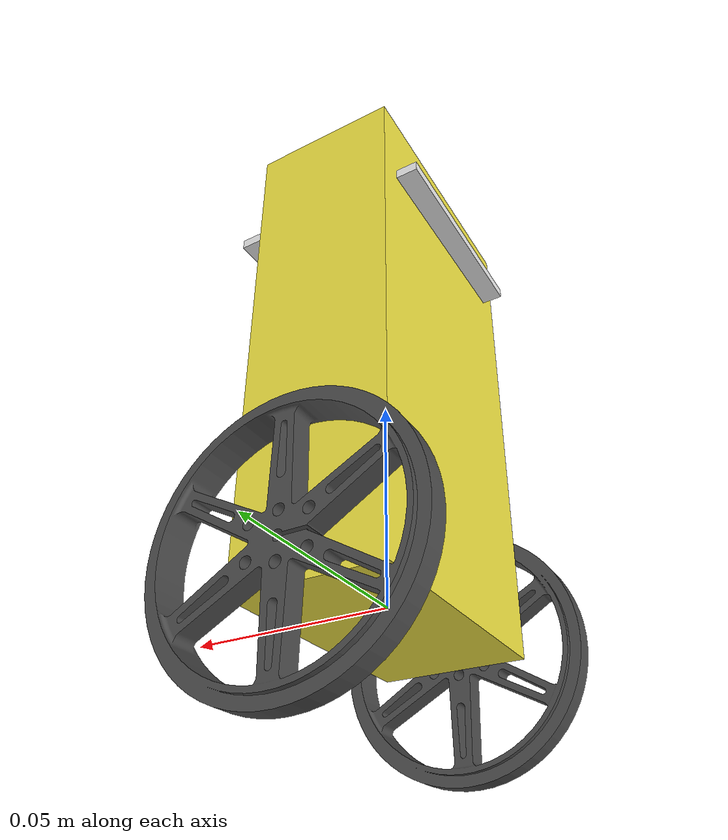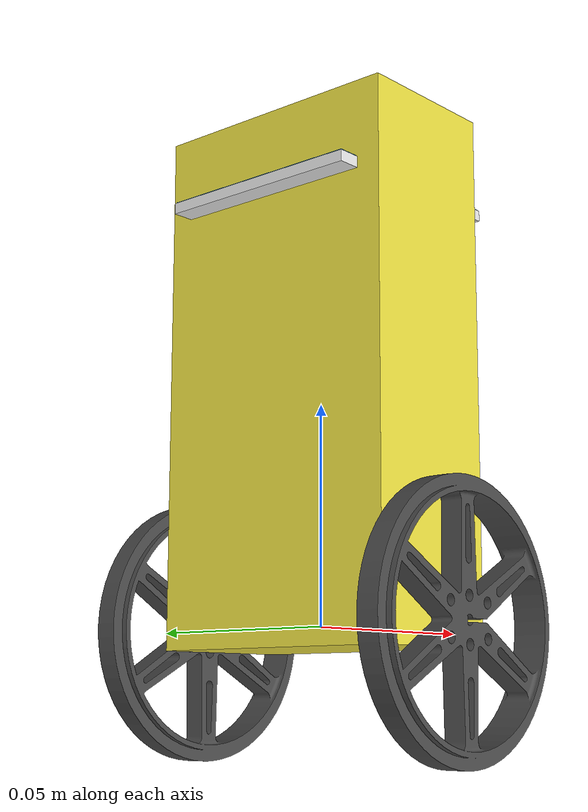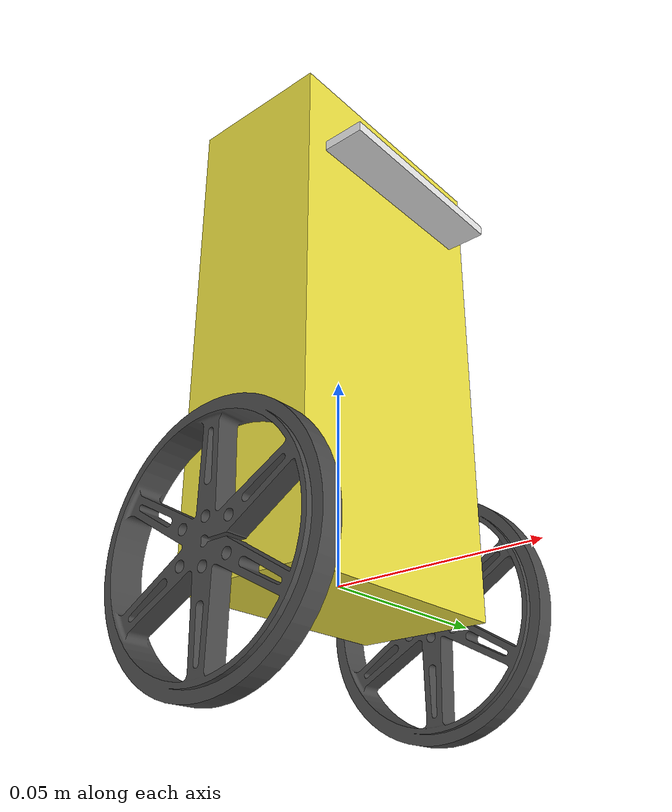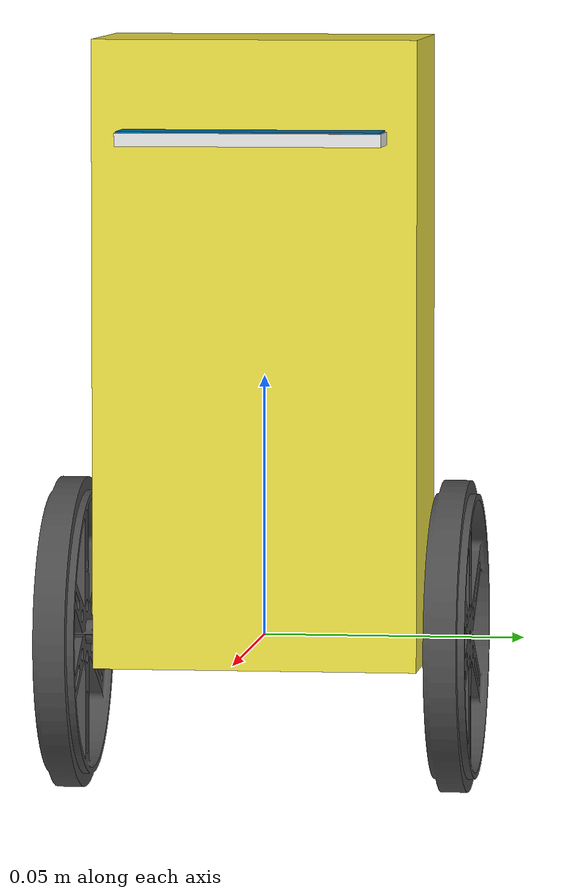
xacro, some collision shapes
<?xml version="1.0"?>

<!-- let's try a robot with aruco marker -->
<robot name="rosmip_4" xmlns:xacro="http://www.ros.org/wiki/xacro">

  <xacro:property name="chassis_length" value="0.035" />
  <xacro:property name="chassis_width"  value="0.062" />
  <xacro:property name="chassis_height" value="0.12" />
  <xacro:property name="chassis_mass"   value="0.18" />
  <xacro:property name="chassis_vert_offset" value="0.055" />

  <xacro:property name="left_wheel_radius"  value="0.03" />
  <xacro:property name="right_wheel_radius" value="0.03" />
  <xacro:property name="wheel_width"  value="0.01" />
  <xacro:property name="wheel_track"  value="0.083" />
  <xacro:property name="wheel_mass"   value="0.01" />
  <xacro:property name="wheel_joint_damping" value="0.01" />
  <xacro:property name="wheel_joint_friction" value="0.01" />

  <xacro:property name="high_definition_wheel_visual" value="true" />
  <xacro:property name="high_definition_body_visual" value="true" />

  <xacro:property name="use_infrared_marker" value="false" />
  <xacro:property name="use_aruco_marker" value="true" />

  <xacro:include filename="$(find rosmip_description)/urdf/rosmip.urdf.xacro" />

</robot>

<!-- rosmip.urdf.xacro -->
<robot name="rosmip" xmlns:xacro="http://www.ros.org/wiki/xacro">

  <!-- Dimensions -->
  <xacro:property name="PI" value="3.1415926535897931" />

  <!-- appearance -->

  <material name="light_grey"><color rgba="0.4 0.4 0.4 1.0" /></material>
  <material name="yellow"><color rgba="0.8 0.8 0.0 1.0" /></material>
  <material name="black"><color rgba="0.15 0.15 0.15 1.0" /></material>

  <!-- infrared marker -->

  <!-- Inertia macros -->
  <xacro:include filename="$(find rosmip_description)/urdf/inertias.urdf.xacro" />

  <!-- Wheels -->
  <xacro:macro name="wheel" params="prefix wheel_radius lr_reflect *joint_pose">
    <xacro:property name="wheel_mesh_scale" value="${wheel_radius/0.03}" />
    <link name="${prefix}_wheel_link">
      <visual>
	<xacro:unless value="${high_definition_wheel_visual}">
	  <origin xyz="0 0 0" rpy="${PI/2} 0 0"/>
          <geometry>
	    <cylinder radius="${wheel_radius}" length="${wheel_width}"/>
          </geometry>
          <material name="yellow" />
	</xacro:unless>
	<xacro:if value="${high_definition_wheel_visual}">
	  <origin xyz="0 0 0" rpy="0 0 ${lr_reflect*PI/2}"/>
          <geometry>
	    <mesh scale="1. ${wheel_mesh_scale} ${wheel_mesh_scale}" filename="package://rosmip_description/meshes/wheel_60.dae"/>
          </geometry>
	</xacro:if>
      </visual>
      <collision>
        <origin xyz="0 0 0" rpy="${PI/2} 0 0"/>
        <geometry>
          <cylinder radius="${wheel_radius}" length="${wheel_width}"/>
        </geometry>
      </collision>
      <xacro:inertial_cylinder_with_pose mass="${wheel_mass}" radius="${wheel_radius}" height="${wheel_width}">
	<origin xyz="0 0 0" rpy="${PI/2} 0 0"/>
      </xacro:inertial_cylinder_with_pose>
    </link>

    <gazebo reference="${prefix}_wheel_link">
      <material>Gazebo/DarkGrey</material>
    </gazebo>

    <joint name="${prefix}_wheel_joint" type="continuous">
      <parent link="chassis_link"/>
      <child link="${prefix}_wheel_link" />
      <xacro:insert_block name="joint_pose" />
      <axis xyz="0 1 0" />
      <dynamics damping="${wheel_joint_damping}" friction="${wheel_joint_friction}"/>
      <limit effort="1" velocity="10"/>
    </joint>

    <transmission name="${prefix}_wheel_trans">
      <type>transmission_interface/SimpleTransmission</type>
      <joint name="${prefix}_wheel_joint">
	<hardwareInterface>hardware_interface/EffortJointInterface</hardwareInterface>
      </joint>
      <actuator name="${prefix}_actuator">
        <hardwareInterface>EffortJointInterface</hardwareInterface>
	<mechanicalReduction>1</mechanicalReduction>
      </actuator>
    </transmission>
  </xacro:macro>

  <xacro:wheel prefix="left" wheel_radius="${left_wheel_radius}" lr_reflect="1">
    <origin xyz="0 ${(wheel_track-wheel_width)/2} 0" rpy="0 0 0" />
  </xacro:wheel>
  <xacro:wheel prefix="right"  wheel_radius="${right_wheel_radius}" lr_reflect="-1">
    <origin xyz="0 ${-(wheel_track-wheel_width)/2} 0" rpy="0 0 0" />
  </xacro:wheel>

  <!-- Body -->
  <link name="base_link"></link>

  <joint name="base_link_joint" type="fixed">
    <origin xyz="0 0 0" rpy="0 0 0" />
    <parent link="base_link"/>
    <child link="chassis_link" />
  </joint>

  <link name="chassis_link">
    <visual>
	<xacro:if value="${high_definition_body_visual}">
	  <origin xyz="0.009 0 ${chassis_vert_offset-0.025}" rpy="${pi/2} 0 ${pi/2}"/>
	  <geometry>
	    <mesh filename="package://rosmip_description/meshes/body_murat.dae"/>
	  </geometry>
	</xacro:if>
	<xacro:unless value="${high_definition_body_visual}">
	  <origin xyz="0 0 ${chassis_vert_offset}" rpy="0 0 0"/>
	  <geometry>
	    <box size="${chassis_length} ${chassis_width} ${chassis_height}"/>
	  </geometry>
	  <material name="yellow" />
	</xacro:unless>
    </visual>
    <collision>
      <origin xyz="0 0 ${chassis_vert_offset}"/>
      <geometry>
        <box size="${chassis_length} ${chassis_width} ${chassis_height}"/>
      </geometry>
    </collision>
    <xacro:inertial_cuboid_with_pose mass="${chassis_mass}" x_length="${chassis_length}" y_length="${chassis_width}" z_length="${chassis_height}">
      <origin xyz="0.00  0.00 ${chassis_vert_offset}" rpy="0 0 0"/>
    </xacro:inertial_cuboid_with_pose>
  </link>

  <!-- Infrared Marker -->

  <xacro:if value="${use_infrared_marker}">
     <xacro:arg name="root_link" default="irm_link"/>
     <xacro:arg name="mesh" default="ir_marker.dae"/>
     <xacro:include filename="$(find smocap)/urdf/ir_marker.urdf.xacro" />
     <xacro:ir_marker root_link="$(arg root_link)" mesh="$(arg mesh)"/>

    <xacro:property name="irm_z" value="0.12" />

    <joint name="irm_joint" type="fixed">
      <origin xyz="0 0 ${irm_z}" rpy="0 0 0" />
      <parent link="chassis_link"/>
      <child link="irm_link" />
    </joint>

  </xacro:if>

  <!-- Aruco Marker -->
  <xacro:if value="${use_aruco_marker}">
    <xacro:arg name="root_link" default="irm_link"/>
    <xacro:arg name="marker_texture" default="Aruco14"/>
    <xacro:include filename="$(find smocap)/urdf/chessboard.urdf.xacro" />
    <xacro:property name="chsbrd_dx"   value="0.05" />
    <xacro:property name="chsbrd_dy"   value="0.05" />
    <xacro:property name="chsbrd_dz"   value="0.0025" />
    <xacro:chessboard root_link="$(arg root_link)" texture="$(arg marker_texture)" static="false"/>

    <xacro:property name="irm_z" value="0.098" />

    <joint name="irm_joint" type="fixed">
      <origin xyz="0.0025 0 ${irm_z}" rpy="0 0 0" />
      <parent link="chassis_link"/>
      <child link="irm_link" />
    </joint>

  </xacro:if>

  <!-- IMU -->
  <link name="imu_link"/>
  <joint name="imu_joint" type="fixed">
    <origin xyz="0 0 ${chassis_vert_offset}" rpy="${PI/2} 0 ${PI/2} " />
    <parent link="base_link" />
    <child link="imu_link" />
  </joint>

  <gazebo reference="imu_link">

  </gazebo>

  <!-- Bring in simulation data for Gazebo. -->
  <xacro:include filename="$(find rosmip_description)/urdf/rosmip.gazebo" />

</robot>

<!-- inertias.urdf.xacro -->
<robot name="rosmip" xmlns:xacro="http://www.ros.org/wiki/xacro">

  <!-- Inertia tensors for common solids -->

  <xacro:macro name="box_inertia" params="mass x_length y_length z_length">
    <inertia ixx="${(1/12) * mass * (y_length*y_length + z_length*z_length)}" ixy="0.0" ixz="0.0"
             iyy="${(1/12) * mass * (x_length*x_length + z_length*z_length)}" iyz="0.0"
             izz="${(1/12) * mass * (x_length*x_length + y_length*y_length)}" />
  </xacro:macro>

  <xacro:macro name="cylinder_inertia" params="mass radius height">
    <inertia  ixx="${mass*(3*radius*radius+height*height)/12}" ixy = "0" ixz = "0"
              iyy="${mass*(3*radius*radius+height*height)/12}" iyz = "0"
              izz="${mass*radius*radius/2}" />
  </xacro:macro>

  <xacro:macro name="hollow_cylinder_inertia" params="mass radius height">
    <inertia ixx="${(1/12)*mass*(3*(inner_rad*inner_rad+outer_rad*outer_rad)+height*height)}" ixy="0" ixz="0"
             iyy="${(1/12)*mass*(3*(inner_rad*inner_rad+outer_rad*outer_rad)+height*height)}" iyz="0"
             izz="${mass*(inner_rad*inner_rad+outer_rad*outer_rad)/2}" />
  </xacro:macro>

  <!-- Inertial solids -->

  <xacro:macro name="inertial_cuboid_with_pose" params="mass x_length y_length z_length *origin">
    <inertial>
      <xacro:insert_block name="origin"/>
      <mass value="${mass}" />
      <xacro:box_inertia mass="${mass}" x_length="${x_length}" y_length="${y_length}" z_length="${z_length}"/>
    </inertial>
  </xacro:macro>

  <xacro:macro name="inertial_cylinder_with_pose" params="mass radius height *origin">
    <inertial>
      <xacro:insert_block name="origin" />
      <mass value="${mass}" />
      <xacro:cylinder_inertia mass="${mass}" radius="${radius}" height="${height}" />
    </inertial>
  </xacro:macro>

  <xacro:macro name="inertial_hollow_tube_with_pose" params="mass inner_rad outer_rad height">
    <inertial>
      <mass value="${mass}"/>
      <xacro:hollow_cylinder_inertia mass="${mass}" inner_rad="${inner_rad}" outer_rad="${outer_rad}" height="${height}" />
    </inertial>
  </xacro:macro>

</robot>

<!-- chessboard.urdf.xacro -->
<robot name="smocap_chessboard" xmlns:xacro="http://www.ros.org/wiki/xacro">

  <xacro:property name="chsbrd_dx"   value="1.0" />
  <xacro:property name="chsbrd_dy"   value="1.0" />
  <xacro:property name="chsbrd_dz"   value="0.01" />
  <xacro:property name="chsbrd_mass" value="0.01" />
  <xacro:property name="chsbrd_z"    value="${-chsbrd_dz/2.}" />  <!-- place origin on face -->

  <!-- Include inertia macros -->
  <xacro:include filename="$(find smocap)/urdf/inertias.urdf.xacro" />

  <xacro:macro name="chessboard" params="root_link texture static">
    <link name="${root_link}">
      <visual>
	<origin xyz="0 0 ${chsbrd_z}" rpy="0 0 0"/>
	<geometry>
          <box size="${chsbrd_dx} ${chsbrd_dy} ${chsbrd_dz}"/>
	</geometry>
      </visual>
      <collision>
	<origin xyz="0 0 ${chsbrd_z}" rpy="0 0 0"/>
	<geometry>
          <box size="${chsbrd_dx} ${chsbrd_dy} ${chsbrd_dz}"/>
	</geometry>
      </collision>
      <xacro:inertial_cuboid_with_pose mass="${chsbrd_mass}" x_length="${chsbrd_dx}" y_length="${chsbrd_dy}" z_length="${chsbrd_dz}">
	<origin xyz="0 0 ${chsbrd_z}" rpy="0 0 0"/>
      </xacro:inertial_cuboid_with_pose>
    </link>

    <xacro:property name="bgdx" value="${chsbrd_dx*1.01}"/>
    <xacro:property name="bgdy" value="${chsbrd_dy*1.01}"/>
    <xacro:property name="bgdz" value="${chsbrd_dz*1.00}"/>
    <xacro:property name="bgz"  value="${chsbrd_z-chsbrd_dz*0.1}" />  <!-- move background 10 percent behind chessboard -->

    <link name="background_link">
      <visual>
	<origin xyz="0 0 ${bgz}" rpy="0 0 0"/>
	<geometry>
          <box size="${bgdx} ${bgdy} ${bgdz}"/>
	</geometry>
      </visual>
      <collision>
	<origin xyz="0 0 ${bgz}" rpy="0 0 0"/>
	<geometry>
          <box size="${bgdx} ${bgdy} ${bgdz}"/>
	</geometry>
      </collision>
      <xacro:inertial_cuboid_with_pose mass="${chsbrd_mass}" x_length="${bgdx}" y_length="${bgdy}" z_length="${bgdz}">
	<origin xyz="0 0 ${bgz}" rpy="0 0 0"/>
      </xacro:inertial_cuboid_with_pose>
    </link>

    <joint name="fixed" type="fixed">
      <parent link="${root_link}"/>
      <child link="background_link"/>
    </joint>

    <gazebo reference="${root_link}">
      <material>${texture}</material>
    </gazebo>

    <gazebo reference="background_link">
      <material>Gazebo/White</material>
    </gazebo>

    <xacro:if value="${static}">
      <gazebo>
	<static>true</static>
      </gazebo>
    </xacro:if>
  </xacro:macro>

</robot>
